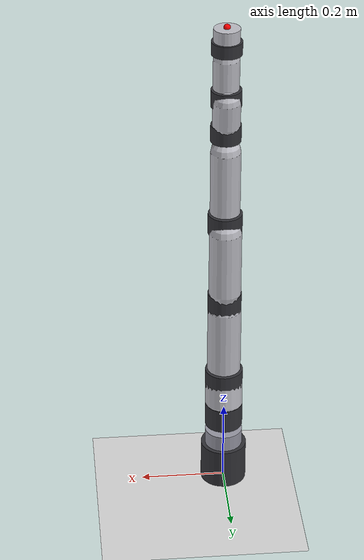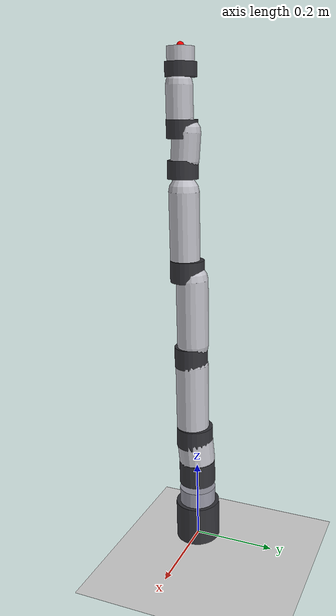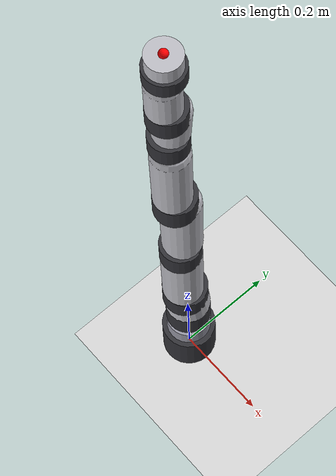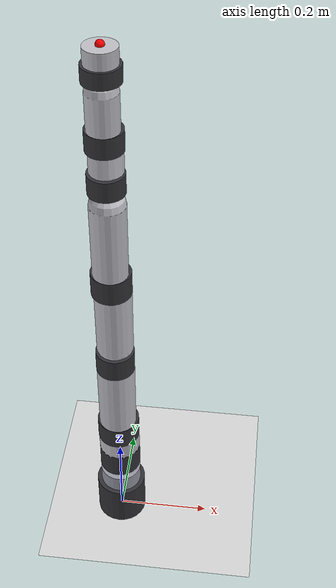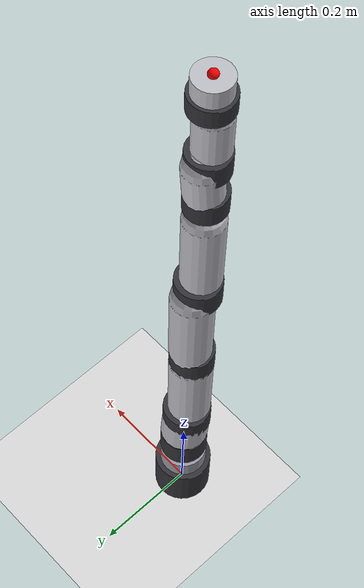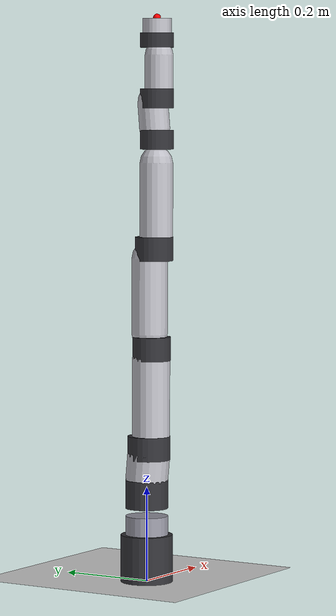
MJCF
<mujoco model="kinova_gen3_7dof_no_ee">
  <compiler angle="radian" autolimits="true"/>
  <option timestep="0.001" integrator="implicitfast" gravity="0 0 -9.81"/>

  <default>
    <default class="gen3">
      <joint damping="0.1" armature="0.01" frictionloss="0.05"/>
      <geom rgba="0.75 0.75 0.78 1" contype="1" conaffinity="1"/>
      <default class="gen3_visual">
        <geom contype="0" conaffinity="0" group="1" rgba="0.75 0.75 0.78 1"/>
      </default>
      <default class="gen3_collision">
        <geom group="3" rgba="0.5 0.6 0.7 0.3"/>
      </default>
      <default class="big_motor">
        <motor ctrlrange="-39 39" forcerange="-39 39"/>
      </default>
      <default class="small_motor">
        <motor ctrlrange="-9 9" forcerange="-9 9"/>
      </default>
    </default>
  </default>

  <worldbody>
    <light name="top" pos="0 0 2" dir="0 0 -1" diffuse="0.8 0.8 0.8" specular="0.2 0.2 0.2"/>
    <light name="side" pos="1 -1 1.5" dir="-1 1 -1" diffuse="0.4 0.4 0.4"/>
    <geom name="floor" type="plane" size="2 2 0.05" rgba="0.85 0.85 0.85 1" contype="1" conaffinity="1"/>

    <!-- base_link: fixed to world (base_joint fixed in URDF) -->
    <body name="base_link" pos="0 0 0" childclass="gen3">
      <inertial pos="-0.000648 -0.000166 0.084487" mass="1.697"
                fullinertia="0.004622 0.004495 0.002079 9e-06 6e-05 9e-06"/>
      <geom class="gen3_visual" type="cylinder" pos="0 0 0.05" size="0.055 0.05" rgba="0.2 0.2 0.22 1"/>
      <geom class="gen3_visual" type="cylinder" pos="0 0 0.12" size="0.045 0.02" rgba="0.6 0.6 0.65 1"/>
      <geom class="gen3_collision" type="cylinder" pos="0 0 0.078" size="0.06 0.078"/>

      <!-- shoulder_link: joint_1 continuous, xyz 0 0 0.15643, rpy 3.1416 0 0 -->
      <body name="shoulder_link" pos="0 0 0.15643" quat="0 1 0 0">
        <joint name="joint_1" type="hinge" axis="0 0 1" range="-6.2832 6.2832" limited="false"/>
        <inertial pos="-2.3e-05 -0.010364 -0.07336" mass="1.3773"
                  fullinertia="0.00457 0.004831 0.001409 1e-06 2e-06 0.000448"/>
        <geom class="gen3_visual" type="cylinder" pos="0 0 -0.03" size="0.045 0.03" rgba="0.2 0.2 0.22 1"/>
        <geom class="gen3_visual" type="capsule" fromto="0 0 -0.06 0 0.005 -0.115" size="0.045" rgba="0.75 0.75 0.78 1"/>
        <geom class="gen3_collision" type="capsule" fromto="0 0 -0.02 0 0.005 -0.115" size="0.05"/>

        <!-- half_arm_1_link: joint_2 revolute, xyz 0 0.005375 -0.12838, rpy 1.5708 0 0 -->
        <body name="half_arm_1_link" pos="0 0.005375 -0.12838" quat="0.7071068 0.7071068 0 0">
          <joint name="joint_2" type="hinge" axis="0 0 1" range="-2.24 2.24"/>
          <inertial pos="-4.4e-05 -0.09958 -0.013278" mass="1.1636"
                    fullinertia="0.011088 0.001072 0.011255 5e-06 0 -0.000691"/>
          <geom class="gen3_visual" type="cylinder" pos="0 0 0" size="0.045 0.025" rgba="0.2 0.2 0.22 1" euler="1.5708 0 0"/>
          <geom class="gen3_visual" type="capsule" fromto="0 -0.02 -0.005 0 -0.19 -0.005" size="0.04" rgba="0.75 0.75 0.78 1"/>
          <geom class="gen3_collision" type="capsule" fromto="0 -0.02 -0.005 0 -0.2 -0.006" size="0.045"/>

          <!-- half_arm_2_link: joint_3 continuous, xyz 0 -0.21038 -0.006375, rpy -1.5708 0 0 -->
          <body name="half_arm_2_link" pos="0 -0.21038 -0.006375" quat="0.7071068 -0.7071068 0 0">
            <joint name="joint_3" type="hinge" axis="0 0 1" range="-6.2832 6.2832" limited="false"/>
            <inertial pos="-4.4e-05 -0.006641 -0.117892" mass="1.1636"
                      fullinertia="0.010932 0.011127 0.001043 0 -7e-06 0.000606"/>
            <geom class="gen3_visual" type="cylinder" pos="0 0 0" size="0.04 0.025" rgba="0.2 0.2 0.22 1"/>
            <geom class="gen3_visual" type="capsule" fromto="0 -0.005 -0.03 0 -0.005 -0.19" size="0.038" rgba="0.75 0.75 0.78 1"/>
            <geom class="gen3_collision" type="capsule" fromto="0 -0.005 -0.02 0 -0.006 -0.2" size="0.043"/>

            <!-- forearm_link: joint_4 revolute, xyz 0 0.006375 -0.21038, rpy 1.5708 0 0 -->
            <body name="forearm_link" pos="0 0.006375 -0.21038" quat="0.7071068 0.7071068 0 0">
              <joint name="joint_4" type="hinge" axis="0 0 1" range="-2.57 2.57"/>
              <inertial pos="-1.8e-05 -0.075478 -0.015006" mass="0.9302"
                        fullinertia="0.008147 0.000631 0.008316 -1e-06 0 -0.0005"/>
              <geom class="gen3_visual" type="cylinder" pos="0 0 0" size="0.04 0.025" rgba="0.2 0.2 0.22 1" euler="1.5708 0 0"/>
              <geom class="gen3_visual" type="capsule" fromto="0 -0.02 -0.005 0 -0.18 -0.005" size="0.035" rgba="0.75 0.75 0.78 1"/>
              <geom class="gen3_collision" type="capsule" fromto="0 -0.02 -0.006 0 -0.19 -0.006" size="0.04"/>

              <!-- spherical_wrist_1_link: joint_5 continuous, xyz 0 -0.20843 -0.006375, rpy -1.5708 0 0 -->
              <body name="spherical_wrist_1_link" pos="0 -0.20843 -0.006375" quat="0.7071068 -0.7071068 0 0">
                <joint name="joint_5" type="hinge" axis="0 0 1" range="-6.2832 6.2832" limited="false"/>
                <inertial pos="1e-06 -0.009432 -0.063883" mass="0.6781"
                          fullinertia="0.001596 0.001607 0.000399 0 0 0.000256"/>
                <geom class="gen3_visual" type="cylinder" pos="0 0 -0.02" size="0.035 0.02" rgba="0.2 0.2 0.22 1"/>
                <geom class="gen3_visual" type="capsule" fromto="0 -0.005 -0.04 0 -0.01 -0.1" size="0.032" rgba="0.75 0.75 0.78 1"/>
                <geom class="gen3_collision" type="capsule" fromto="0 -0.005 -0.03 0 -0.01 -0.1" size="0.037"/>

                <!-- spherical_wrist_2_link: joint_6 revolute, xyz 0 0.00017505 -0.10593, rpy 1.5708 0 0 -->
                <body name="spherical_wrist_2_link" pos="0 0.00017505 -0.10593" quat="0.7071068 0.7071068 0 0">
                  <joint name="joint_6" type="hinge" axis="0 0 1" range="-2.09 2.09"/>
                  <inertial pos="1e-06 -0.045483 -0.00965" mass="0.6781"
                            fullinertia="0.001641 0.00041 0.001641 0 0 -0.000278"/>
                  <geom class="gen3_visual" type="cylinder" pos="0 0 0" size="0.035 0.02" rgba="0.2 0.2 0.22 1" euler="1.5708 0 0"/>
                  <geom class="gen3_visual" type="capsule" fromto="0 -0.02 -0.005 0 -0.09 -0.005" size="0.03" rgba="0.75 0.75 0.78 1"/>
                  <geom class="gen3_collision" type="capsule" fromto="0 -0.02 -0.006 0 -0.1 -0.006" size="0.035"/>

                  <!-- bracelet_link: joint_7 continuous, xyz 0 -0.10593 -0.00017505, rpy -1.5708 0 0 -->
                  <body name="bracelet_link" pos="0 -0.10593 -0.00017505" quat="0.7071068 -0.7071068 0 0">
                    <joint name="joint_7" type="hinge" axis="0 0 1" range="-6.2832 6.2832" limited="false"/>
                    <inertial pos="0.000281 0.011402 -0.029798" mass="0.5"
                              fullinertia="0.000587 0.000369 0.000609 3e-06 3e-06 -0.000118"/>
                    <geom class="gen3_visual" type="cylinder" pos="0 0 -0.015" size="0.035 0.015" rgba="0.2 0.2 0.22 1"/>
                    <geom class="gen3_visual" type="cylinder" pos="0 0 -0.04" size="0.03 0.02" rgba="0.75 0.75 0.78 1"/>
                    <geom class="gen3_collision" type="capsule" fromto="0 0 -0.005 0 0 -0.06" size="0.035"/>

                    <!-- end_effector_link site: fixed frame at bracelet tip, used as EE reference -->
                    <site name="end_effector" pos="0 0 -0.0615525" size="0.008" rgba="1 0 0 1"/>
                  </body>
                </body>
              </body>
            </body>
          </body>
        </body>
      </body>
    </body>
  </worldbody>

  <actuator>
    <!-- Torque actuators: gear=1 => ctrl is torque in Nm directly.
         Big joints (1-4) saturate at 39 Nm, wrist joints (5-7) at 9 Nm,
         matching TAU_MAX in impedance.py. -->
    <motor class="big_motor"   name="actuator_1" joint="joint_1" gear="1"/>
    <motor class="big_motor"   name="actuator_2" joint="joint_2" gear="1"/>
    <motor class="big_motor"   name="actuator_3" joint="joint_3" gear="1"/>
    <motor class="big_motor"   name="actuator_4" joint="joint_4" gear="1"/>
    <motor class="small_motor" name="actuator_5" joint="joint_5" gear="1"/>
    <motor class="small_motor" name="actuator_6" joint="joint_6" gear="1"/>
    <motor class="small_motor" name="actuator_7" joint="joint_7" gear="1"/>
  </actuator>

  <sensor>
    <jointpos name="q1" joint="joint_1"/>
    <jointpos name="q2" joint="joint_2"/>
    <jointpos name="q3" joint="joint_3"/>
    <jointpos name="q4" joint="joint_4"/>
    <jointpos name="q5" joint="joint_5"/>
    <jointpos name="q6" joint="joint_6"/>
    <jointpos name="q7" joint="joint_7"/>
    <jointvel name="dq1" joint="joint_1"/>
    <jointvel name="dq2" joint="joint_2"/>
    <jointvel name="dq3" joint="joint_3"/>
    <jointvel name="dq4" joint="joint_4"/>
    <jointvel name="dq5" joint="joint_5"/>
    <jointvel name="dq6" joint="joint_6"/>
    <jointvel name="dq7" joint="joint_7"/>
    <framepos name="ee_pos" objtype="site" objname="end_effector"/>
    <framequat name="ee_quat" objtype="site" objname="end_effector"/>
  </sensor>

  <keyframe>
    <!-- Home / retract: arm folded up, joint_2 and joint_4 bent to avoid singularity. -->
    <key name="home" qpos="0 0.26 3.1416 -2.27 0 -0.96 1.57"/>
    <!-- Zero pose: all joints at 0 (stretched straight up along -world_z given base flip). -->
    <key name="zero" qpos="0 0 0 0 0 0 0"/>
  </keyframe>
</mujoco>
